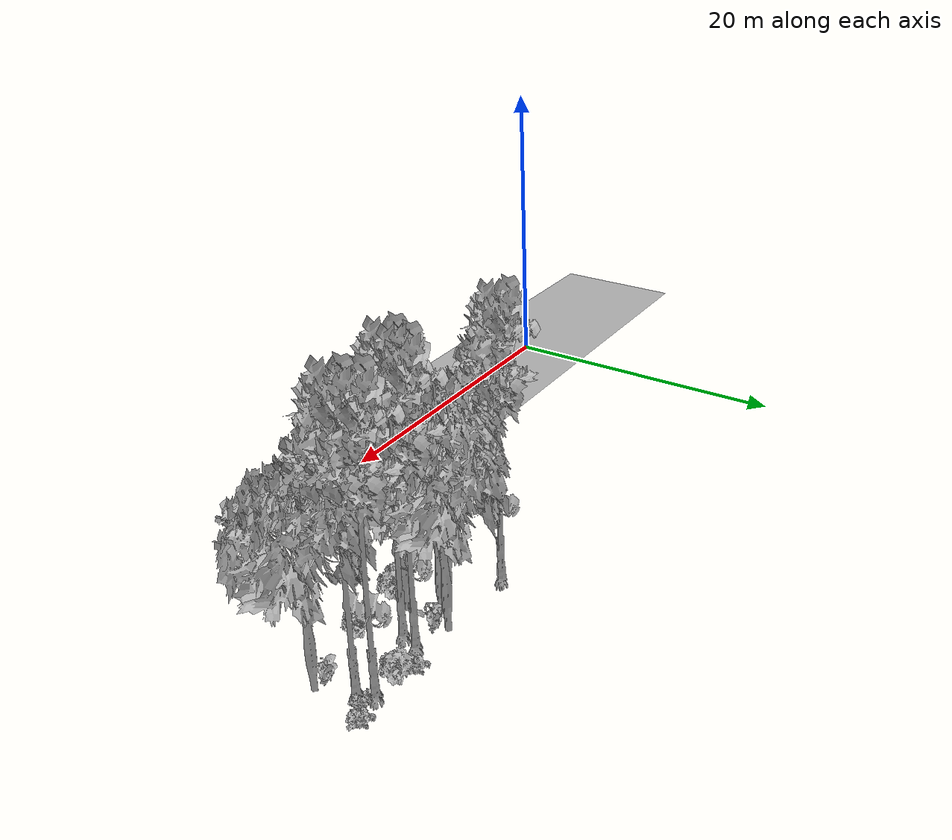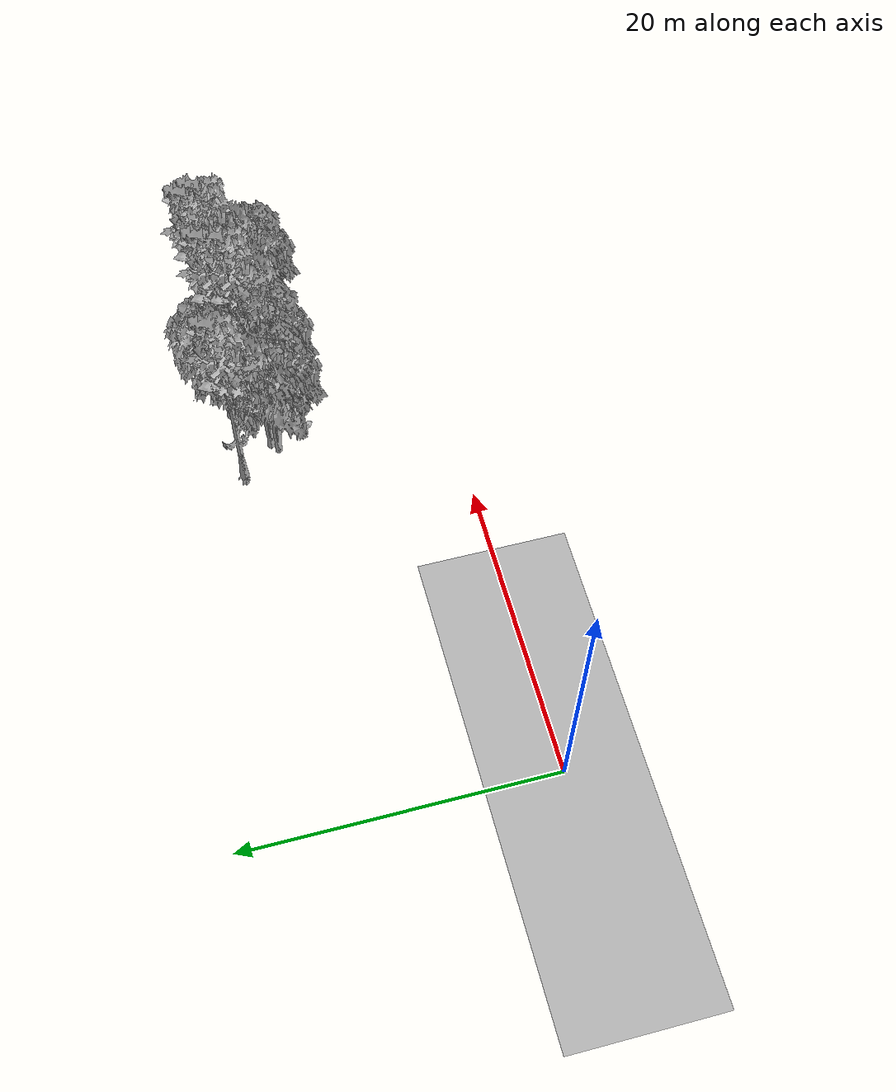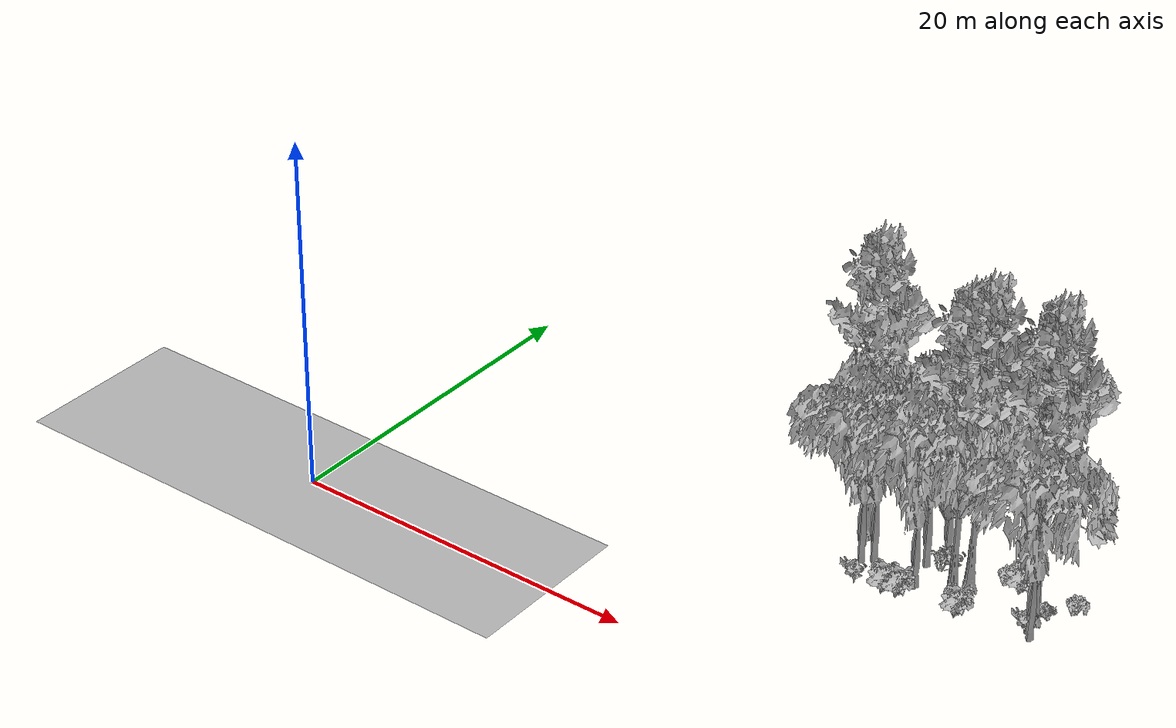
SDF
<sdf version="1.7">
 <world name="default">
  <model name="ground_plane">
   <static>1</static>
   <link name="link">
    <collision name="collision">
     <geometry><plane><normal>0 0 1</normal><size>100 100</size></plane></geometry>
     <surface><contact><ode><min_depth>0.01</min_depth><max_vel>0</max_vel></ode></contact></surface>
    </collision>
    <visual name="grass">
     <cast_shadows>0</cast_shadows>
     <geometry>
      <mesh>
       <scale>0.5814285714285714 0.18142857142857144 0.1</scale>
       <uri>file://grass_plane/meshes/grass_plane.dae</uri>
      </mesh>
     </geometry>
    </visual>
   </link>
  </model>
  <model name="Tree 9">
   <static>1</static>
   <pose>26.462602125775476 11.593560292110084 0 1.57079 -0 0</pose>
   <link name="link">
    <collision name="collision">
     <geometry><mesh><scale>3.5 5 3.5</scale><uri>model://tree_2/meshes/tree_2.obj</uri></mesh></geometry>
    </collision>
    <visual name="visual">
     <geometry><mesh><scale>3.5 5 3.5</scale><uri>model://tree_2/meshes/tree_2.obj</uri></mesh></geometry>
    </visual>
   </link>
  </model>
  <model name="Tree 117">
   <static>1</static>
   <pose>29.735474990322572 11.394761127457269 0 1.57079 -0 0</pose>
   <link name="link">
    <collision name="collision">
     <geometry><mesh><scale>3.5 5 3.5</scale><uri>model://tree_2/meshes/tree_2.obj</uri></mesh></geometry>
    </collision>
    <visual name="visual">
     <geometry><mesh><scale>3.5 5 3.5</scale><uri>model://tree_2/meshes/tree_2.obj</uri></mesh></geometry>
    </visual>
   </link>
  </model>
  <model name="Tree 136">
   <static>1</static>
   <pose>29.95195471323352 14.163106840279106 0 1.57079 -0 0</pose>
   <link name="link">
    <collision name="collision">
     <geometry><mesh><scale>3.5 5 3.5</scale><uri>model://tree_2/meshes/tree_2.obj</uri></mesh></geometry>
    </collision>
    <visual name="visual">
     <geometry><mesh><scale>3.5 5 3.5</scale><uri>model://tree_2/meshes/tree_2.obj</uri></mesh></geometry>
    </visual>
   </link>
  </model>
  <model name="Tree 155">
   <static>1</static>
   <pose>35.70580866303608 13.014741534452597 0 1.57079 -0 0</pose>
   <link name="link">
    <collision name="collision">
     <geometry><mesh><scale>3.5 5 3.5</scale><uri>model://tree_9/meshes/tree_9.obj</uri></mesh></geometry>
    </collision>
    <visual name="visual">
     <geometry><mesh><scale>3.5 5 3.5</scale><uri>model://tree_9/meshes/tree_9.obj</uri></mesh></geometry>
    </visual>
   </link>
  </model>
  <model name="Tree 271">
   <static>1</static>
   <pose>29.262844757148954 13.281605273318814 0 1.57079 -0 0</pose>
   <link name="link">
    <collision name="collision">
     <geometry><mesh><scale>3.5 5 3.5</scale><uri>model://tree_2/meshes/tree_2.obj</uri></mesh></geometry>
    </collision>
    <visual name="visual">
     <geometry><mesh><scale>3.5 5 3.5</scale><uri>model://tree_2/meshes/tree_2.obj</uri></mesh></geometry>
    </visual>
   </link>
  </model>
  <model name="Tree 308">
   <static>1</static>
   <pose>31.79015315129257 13.468737026506936 0 1.57079 -0 0</pose>
   <link name="link">
    <collision name="collision">
     <geometry><mesh><scale>3.5 5 3.5</scale><uri>model://tree_9/meshes/tree_9.obj</uri></mesh></geometry>
    </collision>
    <visual name="visual">
     <geometry><mesh><scale>3.5 5 3.5</scale><uri>model://tree_9/meshes/tree_9.obj</uri></mesh></geometry>
    </visual>
   </link>
  </model>
  <model name="Tree 325">
   <static>1</static>
   <pose>31.427809380555487 12.397231828007808 0 1.57079 -0 0</pose>
   <link name="link">
    <collision name="collision">
     <geometry><mesh><scale>3.5 5 3.5</scale><uri>model://tree_9/meshes/tree_9.obj</uri></mesh></geometry>
    </collision>
    <visual name="visual">
     <geometry><mesh><scale>3.5 5 3.5</scale><uri>model://tree_9/meshes/tree_9.obj</uri></mesh></geometry>
    </visual>
   </link>
  </model>
  <model name="Tree 335">
   <static>1</static>
   <pose>25.24196858311322 14.220674286060998 0 1.57079 -0 0</pose>
   <link name="link">
    <collision name="collision">
     <geometry><mesh><scale>3.5 5 3.5</scale><uri>model://tree_9/meshes/tree_9.obj</uri></mesh></geometry>
    </collision>
    <visual name="visual">
     <geometry><mesh><scale>3.5 5 3.5</scale><uri>model://tree_9/meshes/tree_9.obj</uri></mesh></geometry>
    </visual>
   </link>
  </model>
  <model name="Tree 365">
   <static>1</static>
   <pose>26.961150389542922 12.01450819580965 0 1.57079 -0 0</pose>
   <link name="link">
    <collision name="collision">
     <geometry><mesh><scale>3.5 5 3.5</scale><uri>model://tree_2/meshes/tree_2.obj</uri></mesh></geometry>
    </collision>
    <visual name="visual">
     <geometry><mesh><scale>3.5 5 3.5</scale><uri>model://tree_2/meshes/tree_2.obj</uri></mesh></geometry>
    </visual>
   </link>
  </model>
  <model name="Tree 419">
   <static>1</static>
   <pose>35.3240515586716 13.851736216787728 0 1.57079 -0 0</pose>
   <link name="link">
    <collision name="collision">
     <geometry><mesh><scale>3.5 5 3.5</scale><uri>model://tree_9/meshes/tree_9.obj</uri></mesh></geometry>
    </collision>
    <visual name="visual">
     <geometry><mesh><scale>3.5 5 3.5</scale><uri>model://tree_9/meshes/tree_9.obj</uri></mesh></geometry>
    </visual>
   </link>
  </model>
  <model name="Tree 427">
   <static>1</static>
   <pose>36.40098064847476 11.159130018007826 0 1.57079 -0 0</pose>
   <link name="link">
    <collision name="collision">
     <geometry><mesh><scale>3.5 5 3.5</scale><uri>model://tree_2/meshes/tree_2.obj</uri></mesh></geometry>
    </collision>
    <visual name="visual">
     <geometry><mesh><scale>3.5 5 3.5</scale><uri>model://tree_2/meshes/tree_2.obj</uri></mesh></geometry>
    </visual>
   </link>
  </model>
  <model name="Bush 30">
   <static>1</static>
   <pose>29.520253902604082 10.078897511099928 0 1.57079 -0 0</pose>
   <link name="link">
    <collision name="collision">
     <geometry><mesh><scale>2 2 2</scale><uri>model://bush_1/meshes/bush_1.obj</uri></mesh></geometry>
     <surface><contact><collide_without_contact>false</collide_without_contact></contact></surface>
    </collision>
    <visual name="visual">
     <geometry><mesh><scale>2 2 2</scale><uri>model://bush_1/meshes/bush_1.obj</uri></mesh></geometry>
    </visual>
   </link>
  </model>
  <model name="Bush 66">
   <static>1</static>
   <pose>34.22163056486981 14.08025692441111 0 1.57079 -0 0</pose>
   <link name="link">
    <collision name="collision">
     <geometry><mesh><scale>2 2 2</scale><uri>model://bush_1/meshes/bush_1.obj</uri></mesh></geometry>
     <surface><contact><collide_without_contact>false</collide_without_contact></contact></surface>
    </collision>
    <visual name="visual">
     <geometry><mesh><scale>2 2 2</scale><uri>model://bush_1/meshes/bush_1.obj</uri></mesh></geometry>
    </visual>
   </link>
  </model>
  <model name="Bush 138">
   <static>1</static>
   <pose>37.30745119761802 14.58142072803799 0 1.57079 -0 0</pose>
   <link name="link">
    <collision name="collision">
     <geometry><mesh><scale>2 2 2</scale><uri>model://bush_3/meshes/bush_3.obj</uri></mesh></geometry>
     <surface><contact><collide_without_contact>false</collide_without_contact></contact></surface>
    </collision>
    <visual name="visual">
     <geometry><mesh><scale>2 2 2</scale><uri>model://bush_3/meshes/bush_3.obj</uri></mesh></geometry>
    </visual>
   </link>
  </model>
  <model name="Bush 154">
   <static>1</static>
   <pose>30.137824593421257 13.422768772125643 0 1.57079 -0 0</pose>
   <link name="link">
    <collision name="collision">
     <geometry><mesh><scale>2 2 2</scale><uri>model://bush_4/meshes/bush_4.obj</uri></mesh></geometry>
     <surface><contact><collide_without_contact>false</collide_without_contact></contact></surface>
    </collision>
    <visual name="visual">
     <geometry><mesh><scale>2 2 2</scale><uri>model://bush_4/meshes/bush_4.obj</uri></mesh></geometry>
    </visual>
   </link>
  </model>
  <model name="Bush 182">
   <static>1</static>
   <pose>36.00970864826495 13.59328382508345 0 1.57079 -0 0</pose>
   <link name="link">
    <collision name="collision">
     <geometry><mesh><scale>2 2 2</scale><uri>model://bush_2/meshes/bush_2.obj</uri></mesh></geometry>
     <surface><contact><collide_without_contact>false</collide_without_contact></contact></surface>
    </collision>
    <visual name="visual">
     <geometry><mesh><scale>2 2 2</scale><uri>model://bush_2/meshes/bush_2.obj</uri></mesh></geometry>
    </visual>
   </link>
  </model>
  <model name="Bush 259">
   <static>1</static>
   <pose>36.092098382588574 11.464881283743939 0 1.57079 -0 0</pose>
   <link name="link">
    <collision name="collision">
     <geometry><mesh><scale>2 2 2</scale><uri>model://bush_0/meshes/bush_0.obj</uri></mesh></geometry>
     <surface><contact><collide_without_contact>false</collide_without_contact></contact></surface>
    </collision>
    <visual name="visual">
     <geometry><mesh><scale>2 2 2</scale><uri>model://bush_0/meshes/bush_0.obj</uri></mesh></geometry>
    </visual>
   </link>
  </model>
  <model name="Bush 288">
   <static>1</static>
   <pose>27.236451158915386 9.874758194125675 0 1.57079 -0 0</pose>
   <link name="link">
    <collision name="collision">
     <geometry><mesh><scale>2 2 2</scale><uri>model://bush_0/meshes/bush_0.obj</uri></mesh></geometry>
     <surface><contact><collide_without_contact>false</collide_without_contact></contact></surface>
    </collision>
    <visual name="visual">
     <geometry><mesh><scale>2 2 2</scale><uri>model://bush_0/meshes/bush_0.obj</uri></mesh></geometry>
    </visual>
   </link>
  </model>
  <model name="Bush 305">
   <static>1</static>
   <pose>28.76676129481332 9.958412821365588 0 1.57079 -0 0</pose>
   <link name="link">
    <collision name="collision">
     <geometry><mesh><scale>2 2 2</scale><uri>model://bush_1/meshes/bush_1.obj</uri></mesh></geometry>
     <surface><contact><collide_without_contact>false</collide_without_contact></contact></surface>
    </collision>
    <visual name="visual">
     <geometry><mesh><scale>2 2 2</scale><uri>model://bush_1/meshes/bush_1.obj</uri></mesh></geometry>
    </visual>
   </link>
  </model>
  <model name="Bush 315">
   <static>1</static>
   <pose>30.67450560248035 13.679650695746027 0 1.57079 -0 0</pose>
   <link name="link">
    <collision name="collision">
     <geometry><mesh><scale>2 2 2</scale><uri>model://bush_0/meshes/bush_0.obj</uri></mesh></geometry>
     <surface><contact><collide_without_contact>false</collide_without_contact></contact></surface>
    </collision>
    <visual name="visual">
     <geometry><mesh><scale>2 2 2</scale><uri>model://bush_0/meshes/bush_0.obj</uri></mesh></geometry>
    </visual>
   </link>
  </model>
  <model name="Bush 334">
   <static>1</static>
   <pose>32.663755870043104 10.456961914896596 0 1.57079 -0 0</pose>
   <link name="link">
    <collision name="collision">
     <geometry><mesh><scale>2 2 2</scale><uri>model://bush_1/meshes/bush_1.obj</uri></mesh></geometry>
     <surface><contact><collide_without_contact>false</collide_without_contact></contact></surface>
    </collision>
    <visual name="visual">
     <geometry><mesh><scale>2 2 2</scale><uri>model://bush_1/meshes/bush_1.obj</uri></mesh></geometry>
    </visual>
   </link>
  </model>
  <model name="Bush 335">
   <static>1</static>
   <pose>33.39990936354917 14.691424198199556 0 1.57079 -0 0</pose>
   <link name="link">
    <collision name="collision">
     <geometry><mesh><scale>2 2 2</scale><uri>model://bush_3/meshes/bush_3.obj</uri></mesh></geometry>
     <surface><contact><collide_without_contact>false</collide_without_contact></contact></surface>
    </collision>
    <visual name="visual">
     <geometry><mesh><scale>2 2 2</scale><uri>model://bush_3/meshes/bush_3.obj</uri></mesh></geometry>
    </visual>
   </link>
  </model>
 </world>
</sdf>
